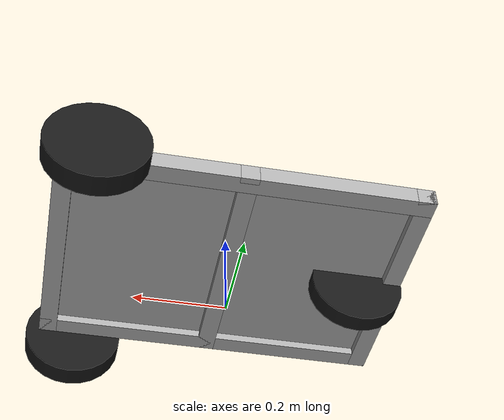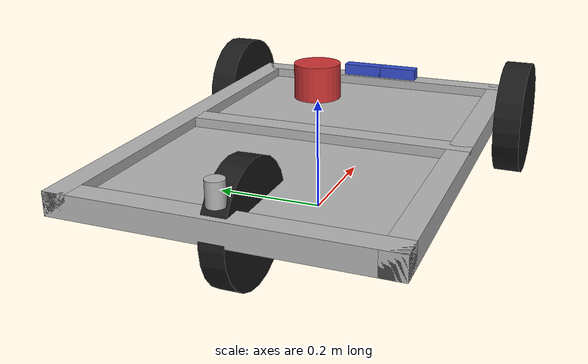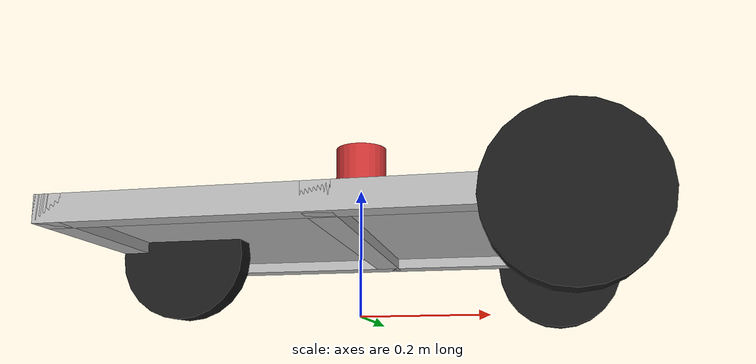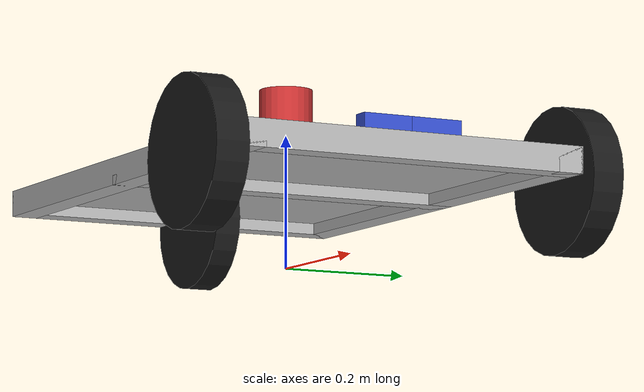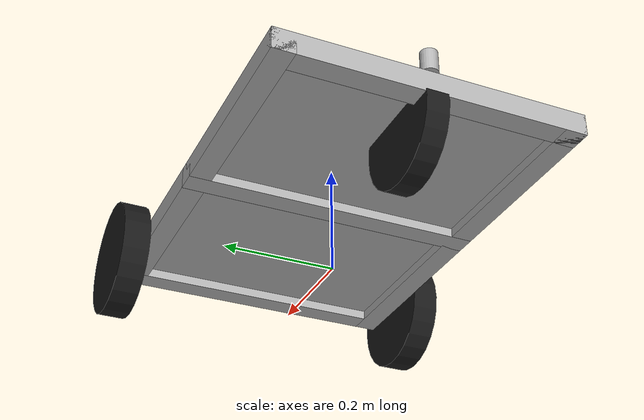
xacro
<?xml version="1.0"?>
<robot xmlns:xacro="http://www.ros.org/wiki/xacro" name="rosmower">

  <!-- ==================== PROPERTIES ==================== -->

  <!-- Material properties -->
  <xacro:property name="aluminum_density" value="2700.0"/> <!-- kg/m^3 -->

  <!-- Chassis dimensions -->
  <xacro:property name="chassis_length" value="0.785"/> <!-- 785mm -->
  <xacro:property name="chassis_width" value="0.550"/> <!-- 550mm -->
  <xacro:property name="extrusion_size" value="0.040"/> <!-- 40mm x 40mm -->

  <!-- Wheel properties -->
  <xacro:property name="drive_wheel_radius" value="0.1091"/> <!-- 27 inch circumference = 4.297 inch radius -->
  <xacro:property name="drive_wheel_width" value="0.050"/> <!-- 50mm width -->
  <xacro:property name="drive_wheel_mass" value="2.0"/> <!-- kg, estimated -->
  <xacro:property name="wheel_separation" value="${chassis_width + 0.05}"/> <!-- Track width -->

  <xacro:property name="caster_wheel_radius" value="0.1016"/> <!-- 8 inches diameter = 4 inch radius -->
  <xacro:property name="caster_wheel_width" value="0.040"/> <!-- 40mm width -->
  <xacro:property name="caster_wheel_mass" value="0.5"/> <!-- kg -->
  <xacro:property name="caster_swivel_offset" value="0.08"/> <!-- Offset from swivel axis to wheel center -->
  <xacro:property name="caster_drop_height" value="0.08"/> <!-- Vertical drop from swivel to wheel axle -->

  <!-- Sensor properties -->
  <xacro:property name="camera_spacing" value="0.0762"/> <!-- 3 inches -->
  <xacro:property name="lidar_height_offset" value="0.100"/> <!-- 100mm above drive wheel height -->

  <!-- Colors for visualization -->
  <material name="aluminum">
    <color rgba="0.7 0.7 0.7 1.0"/>
  </material>

  <material name="black">
    <color rgba="0.1 0.1 0.1 1.0"/>
  </material>

  <material name="blue">
    <color rgba="0.2 0.3 0.8 1.0"/>
  </material>

  <material name="red">
    <color rgba="0.8 0.2 0.2 1.0"/>
  </material>

  <!-- ==================== MACROS ==================== -->

  <!-- Macro for calculating box inertia -->
  <xacro:macro name="box_inertia" params="mass x y z">
    <inertia
      ixx="${(1/12) * mass * (y*y + z*z)}"
      ixy="0.0" ixz="0.0"
      iyy="${(1/12) * mass * (x*x + z*z)}"
      iyz="0.0"
      izz="${(1/12) * mass * (x*x + y*y)}"/>
  </xacro:macro>

  <!-- Macro for calculating cylinder inertia (wheel) -->
  <xacro:macro name="cylinder_inertia" params="mass r h">
    <inertia
      ixx="${(1/12) * mass * (3*r*r + h*h)}"
      ixy="0.0" ixz="0.0"
      iyy="${(1/12) * mass * (3*r*r + h*h)}"
      iyz="0.0"
      izz="${(1/2) * mass * r * r}"/>
  </xacro:macro>

  <!-- Macro for extrusion rail -->
  <xacro:macro name="extrusion_rail" params="name length parent x y z roll pitch yaw">
    <xacro:property name="rail_mass" value="${aluminum_density * extrusion_size * extrusion_size * length}"/>

    <link name="${name}">
      <visual>
        <geometry>
          <box size="${length} ${extrusion_size} ${extrusion_size}"/>
        </geometry>
        <material name="aluminum"/>
      </visual>
      <collision>
        <geometry>
          <box size="${length} ${extrusion_size} ${extrusion_size}"/>
        </geometry>
      </collision>
      <inertial>
        <mass value="${rail_mass}"/>
        <xacro:box_inertia mass="${rail_mass}" x="${length}" y="${extrusion_size}" z="${extrusion_size}"/>
      </inertial>
    </link>

    <joint name="${name}_joint" type="fixed">
      <parent link="${parent}"/>
      <child link="${name}"/>
      <origin xyz="${x} ${y} ${z}" rpy="${roll} ${pitch} ${yaw}"/>
    </joint>
  </xacro:macro>

  <!-- Macro for drive wheel -->
  <xacro:macro name="drive_wheel" params="prefix reflect">
    <link name="${prefix}_wheel">
      <visual>
        <geometry>
          <cylinder radius="${drive_wheel_radius}" length="${drive_wheel_width}"/>
        </geometry>
        <origin xyz="0 0 0" rpy="${pi/2} 0 0"/>
        <material name="black"/>
      </visual>
      <collision>
        <geometry>
          <cylinder radius="${drive_wheel_radius}" length="${drive_wheel_width}"/>
        </geometry>
        <origin xyz="0 0 0" rpy="${pi/2} 0 0"/>
      </collision>
      <inertial>
        <mass value="${drive_wheel_mass}"/>
        <origin xyz="0 0 0" rpy="${pi/2} 0 0"/>
        <xacro:cylinder_inertia mass="${drive_wheel_mass}" r="${drive_wheel_radius}" h="${drive_wheel_width}"/>
      </inertial>
    </link>

    <joint name="${prefix}_wheel_joint" type="continuous">
      <parent link="base_link"/>
      <child link="${prefix}_wheel"/>
      <origin xyz="${chassis_length/2 - 0.08} ${reflect * wheel_separation/2} 0" rpy="0 0 0"/>
      <axis xyz="0 1 0"/>
      <dynamics damping="0.1" friction="0.5"/>
    </joint>

    <!-- Transmission for ros2_control -->
    <transmission name="${prefix}_wheel_trans">
      <type>transmission_interface/SimpleTransmission</type>
      <joint name="${prefix}_wheel_joint">
        <hardwareInterface>hardware_interface/VelocityJointInterface</hardwareInterface>
      </joint>
      <actuator name="${prefix}_wheel_motor">
        <mechanicalReduction>1</mechanicalReduction>
      </actuator>
    </transmission>
  </xacro:macro>

  <!-- Macro for camera (with optical frame) -->
  <xacro:macro name="camera" params="prefix reflect">
    <link name="${prefix}_camera_link">
      <visual>
        <geometry>
          <box size="0.025 0.08 0.025"/>
        </geometry>
        <material name="blue"/>
      </visual>
      <collision>
        <geometry>
          <box size="0.025 0.08 0.025"/>
        </geometry>
      </collision>
      <inertial>
        <mass value="0.1"/>
        <xacro:box_inertia mass="0.1" x="0.025" y="0.08" z="0.025"/>
      </inertial>
    </link>

    <joint name="${prefix}_camera_joint" type="fixed">
      <parent link="base_link"/>
      <child link="${prefix}_camera_link"/>
      <!-- Mount at front center, slightly elevated, spaced horizontally -->
      <origin xyz="${chassis_length/2 - 0.02} ${reflect * camera_spacing/2} 0.05" rpy="0 0 0"/>
    </joint>

    <!-- Camera optical frame (REP 103: Z forward, X right, Y down) -->
    <link name="${prefix}_camera_optical_frame"/>

    <joint name="${prefix}_camera_optical_joint" type="fixed">
      <parent link="${prefix}_camera_link"/>
      <child link="${prefix}_camera_optical_frame"/>
      <origin xyz="0 0 0" rpy="${-pi/2} 0 ${-pi/2}"/>
    </joint>
  </xacro:macro>

  <!-- ==================== ROBOT STRUCTURE ==================== -->

  <!-- Base link (virtual center of chassis frame) -->
  <link name="base_link">
    <!-- Visual representation: central platform plate -->
    <visual>
      <geometry>
        <box size="${chassis_length - 2*extrusion_size} ${chassis_width - 2*extrusion_size} 0.005"/>
      </geometry>
      <origin xyz="0 0 ${extrusion_size/2}" rpy="0 0 0"/>
      <material name="aluminum"/>
    </visual>
    <collision>
      <geometry>
        <box size="${chassis_length - 2*extrusion_size} ${chassis_width - 2*extrusion_size} 0.005"/>
      </geometry>
      <origin xyz="0 0 ${extrusion_size/2}" rpy="0 0 0"/>
    </collision>
    <inertial>
      <mass value="2.0"/>
      <origin xyz="0 0 ${extrusion_size/2}" rpy="0 0 0"/>
      <xacro:box_inertia mass="2.0" x="${chassis_length - 2*extrusion_size}" y="${chassis_width - 2*extrusion_size}" z="0.005"/>
    </inertial>
  </link>

  <!-- Chassis frame: Two longitudinal rails -->
  <xacro:extrusion_rail
    name="left_rail"
    length="${chassis_length}"
    parent="base_link"
    x="0" y="${chassis_width/2 - extrusion_size/2}" z="${extrusion_size/2}"
    roll="0" pitch="0" yaw="0"/>

  <xacro:extrusion_rail
    name="right_rail"
    length="${chassis_length}"
    parent="base_link"
    x="0" y="${-chassis_width/2 + extrusion_size/2}" z="${extrusion_size/2}"
    roll="0" pitch="0" yaw="0"/>

  <!-- Front cross member -->
  <xacro:extrusion_rail
    name="front_cross"
    length="${chassis_width}"
    parent="base_link"
    x="${chassis_length/2 - extrusion_size/2}" y="0" z="${extrusion_size/2}"
    roll="0" pitch="0" yaw="${pi/2}"/>

  <!-- Rear cross member -->
  <xacro:extrusion_rail
    name="rear_cross"
    length="${chassis_width}"
    parent="base_link"
    x="${-chassis_length/2 + extrusion_size/2}" y="0" z="${extrusion_size/2}"
    roll="0" pitch="0" yaw="${pi/2}"/>

  <!-- Middle cross member for rigidity -->
  <xacro:extrusion_rail
    name="middle_cross"
    length="${chassis_width}"
    parent="base_link"
    x="0" y="0" z="${extrusion_size/2}"
    roll="0" pitch="0" yaw="${pi/2}"/>

  <!-- ==================== DRIVE WHEELS ==================== -->

  <xacro:drive_wheel prefix="left" reflect="1"/>
  <xacro:drive_wheel prefix="right" reflect="-1"/>

  <!-- ==================== REAR CASTER WHEEL ==================== -->

  <!-- Swivel base -->
  <link name="caster_swivel">
    <visual>
      <geometry>
        <cylinder radius="0.015" length="0.04"/>
      </geometry>
      <material name="aluminum"/>
    </visual>
    <collision>
      <geometry>
        <cylinder radius="0.015" length="0.04"/>
      </geometry>
    </collision>
    <inertial>
      <mass value="0.3"/>
      <xacro:cylinder_inertia mass="0.3" r="0.015" h="0.04"/>
    </inertial>
  </link>

  <joint name="caster_swivel_joint" type="continuous">
    <parent link="base_link"/>
    <child link="caster_swivel"/>
    <!-- Position at rear edge, height calculated so caster wheel touches ground -->
    <origin xyz="${-chassis_length/2 + extrusion_size/2} 0 ${-drive_wheel_radius + caster_drop_height + caster_wheel_radius}" rpy="0 0 0"/>
    <axis xyz="0 0 1"/>
    <dynamics damping="0.05" friction="0.1"/>
  </joint>

  <!-- Caster wheel -->
  <link name="caster_wheel">
    <visual>
      <geometry>
        <cylinder radius="${caster_wheel_radius}" length="${caster_wheel_width}"/>
      </geometry>
      <origin xyz="0 0 0" rpy="${pi/2} 0 0"/>
      <material name="black"/>
    </visual>
    <collision>
      <geometry>
        <cylinder radius="${caster_wheel_radius}" length="${caster_wheel_width}"/>
      </geometry>
      <origin xyz="0 0 0" rpy="${pi/2} 0 0"/>
    </collision>
    <inertial>
      <mass value="${caster_wheel_mass}"/>
      <origin xyz="0 0 0" rpy="${pi/2} 0 0"/>
      <xacro:cylinder_inertia mass="${caster_wheel_mass}" r="${caster_wheel_radius}" h="${caster_wheel_width}"/>
    </inertial>
  </link>

  <joint name="caster_wheel_joint" type="continuous">
    <parent link="caster_swivel"/>
    <child link="caster_wheel"/>
    <origin xyz="${caster_swivel_offset} 0 ${-caster_drop_height}" rpy="0 0 0"/>
    <axis xyz="0 1 0"/>
    <dynamics damping="0.01" friction="0.05"/>
  </joint>

  <!-- ==================== SENSORS ==================== -->

  <!-- Stereo cameras -->
  <xacro:camera prefix="left" reflect="1"/>
  <xacro:camera prefix="right" reflect="-1"/>

  <!-- LiDAR -->
  <link name="lidar_link">
    <visual>
      <geometry>
        <cylinder radius="0.04" length="0.06"/>
      </geometry>
      <material name="red"/>
    </visual>
    <collision>
      <geometry>
        <cylinder radius="0.04" length="0.06"/>
      </geometry>
    </collision>
    <inertial>
      <mass value="0.2"/>
      <xacro:cylinder_inertia mass="0.2" r="0.04" h="0.06"/>
    </inertial>
  </link>

  <joint name="lidar_joint" type="fixed">
    <parent link="base_link"/>
    <child link="lidar_link"/>
    <!-- Mount 100mm above drive wheel height, centered -->
    <origin xyz="0 0 ${lidar_height_offset + 0.03}" rpy="0 0 0"/>
  </joint>

  <!-- ==================== VIRTUAL LINKS FOR NAVIGATION ==================== -->

  <!-- Footprint link (ground projection for Nav2) -->
  <link name="base_footprint"/>

  <joint name="base_footprint_joint" type="fixed">
    <parent link="base_footprint"/>
    <child link="base_link"/>
    <origin xyz="0 0 ${drive_wheel_radius}" rpy="0 0 0"/>
  </joint>

</robot>
